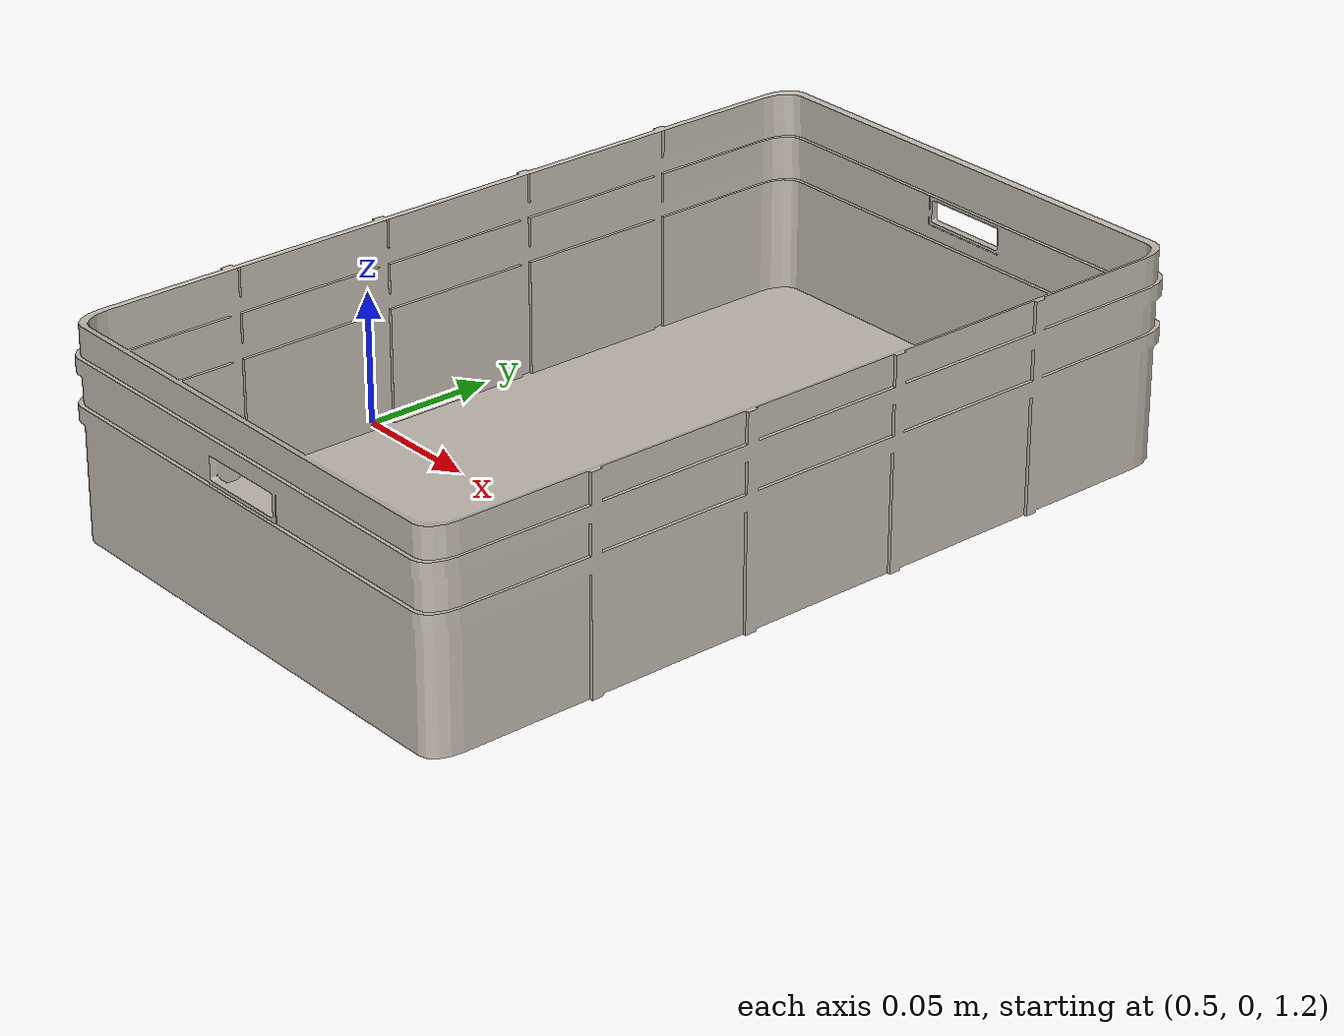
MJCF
<mujoco model="plastic_box">
  <default>
    <default class="plastic_box_visual">
      <geom group="2" type="mesh" contype="0" conaffinity="0"/>
    </default>
    <default class="plastic_box_collision">
      <geom group="3" type="mesh" solref="0.004" solimp="0.95 0.98" condim="6"/>
    </default>
  </default>
  <asset>
    <texture type="2d" name="bottle_texture_0" file="../objects/bigym/plastic_box/texture_0.png"/>
    <material name="bottle_material_0" texture="bottle_texture_0"/>
    <mesh file="../objects/bigym/plastic_box/plastic_box.obj" name="plastic_box" scale="0.33 0.37 0.42" refquat="0.707 -0.707 0.0 0.0"/>
    <mesh file="../objects/bigym/plastic_box/plastic_box_collision_0.obj" name="plastic_box_collision_0" scale="0.33 0.37 0.42" refquat="0.707 -0.707 0.0 0.0"/>
    <mesh file="../objects/bigym/plastic_box/plastic_box_collision_1.obj" name="plastic_box_collision_1" scale="0.33 0.37 0.42" refquat="0.707 -0.707 0.0 0.0"/>
    <mesh file="../objects/bigym/plastic_box/plastic_box_collision_2.obj" name="plastic_box_collision_2" scale="0.33 0.37 0.42" refquat="0.707 -0.707 0.0 0.0"/>
    <mesh file="../objects/bigym/plastic_box/plastic_box_collision_3.obj" name="plastic_box_collision_3" scale="0.33 0.37 0.42" refquat="0.707 -0.707 0.0 0.0"/>
    <mesh file="../objects/bigym/plastic_box/plastic_box_collision_4.obj" name="plastic_box_collision_4" scale="0.33 0.37 0.42" refquat="0.707 -0.707 0.0 0.0"/>
    <mesh file="../objects/bigym/plastic_box/plastic_box_collision_5.obj" name="plastic_box_collision_5" scale="0.33 0.37 0.42" refquat="0.707 -0.707 0.0 0.0"/>
  </asset>
  <worldbody>
    <body name="plastic_box" pos="0.58 0.05 1.185">
      <geom material="bottle_material_0" mesh="plastic_box" class="plastic_box_visual"/>
      <geom mesh="plastic_box_collision_0" rgba="0.1317471182773694 0.9579872366658739 0.4567872566728943 1" class="plastic_box_collision"/>
      <geom mesh="plastic_box_collision_1" rgba="0.9508083359340955 0.6071479300360293 0.4624626481189035 1" class="plastic_box_collision"/>
      <geom mesh="plastic_box_collision_2" rgba="0.2997375555485986 0.2528180678839105 0.3835646087417869 1" class="plastic_box_collision"/>
      <geom mesh="plastic_box_collision_3" rgba="0.7458657464430151 0.9088144095272849 0.7051509978130392 1" class="plastic_box_collision"/>
      <geom mesh="plastic_box_collision_4" rgba="0.9280014695183042 0.03154883225999894 0.14897933840846855 1" class="plastic_box_collision"/>
      <geom mesh="plastic_box_collision_5" rgba="0.9958032270252464 0.9788864813025022 0.6180842167303812 1" class="plastic_box_collision"/>
    </body>
  </worldbody>
</mujoco>
